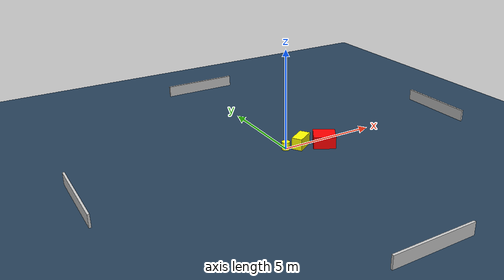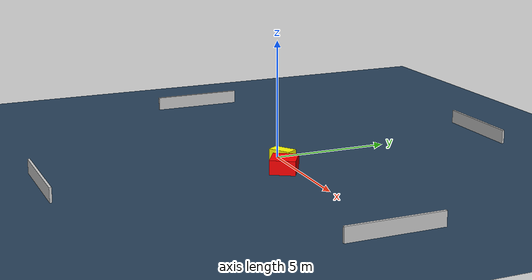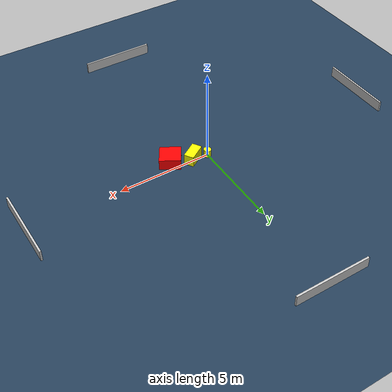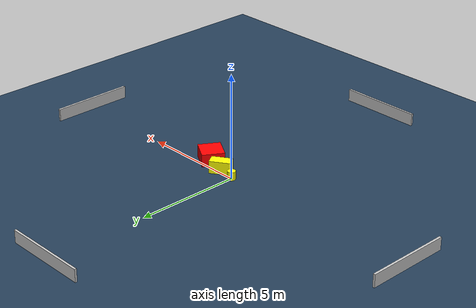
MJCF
<?xml version="1.0" ?>
<mujoco model="generated_environment">
  <option timestep="0.01" integrator="RK4" cone="elliptic"/>
  <default>
    <geom density="1"/>
  </default>
  <asset>
    <texture builtin="gradient" height="3072" name="skybox" rgb1="0.3 0.5 0.7" rgb2="0 0 0" type="skybox" width="512"/>
    <texture builtin="checker" height="300" name="groundplane" rgb1="0.2 0.3 0.4" rgb2="0.1 0.2 0.3" type="2d" width="300"/>
    <material name="groundplane" reflectance="0.2" texrepeat="5 5" texture="groundplane"/>
  </asset>
  <worldbody>
    <light dir="0 0 -1" directional="true" pos="0 0 1.5"/>
    <geom condim="3" friction="0.5 0.005 0.001" material="groundplane" name="floor" pos="0 0 0" size="0 0 0.05" type="plane"/>
    <body name="walls">
      <geom name="wall_1" condim="4" pos="-10.0 0.0 0.3" rgba="0.800000011920929 0.800000011920929 0.800000011920929 1.0" size="0.05 2.0 0.3" type="box"/>
      <geom name="wall_2" condim="4" pos="10.0 0.0 0.3" rgba="0.800000011920929 0.800000011920929 0.800000011920929 1.0" size="0.05 2.0 0.3" type="box"/>
      <geom name="wall_3" condim="4" pos="0.0 -10.0 0.3" rgba="0.800000011920929 0.800000011920929 0.800000011920929 1.0" size="2.0 0.05 0.3" type="box"/>
      <geom name="wall_4" condim="4" pos="0.0 10.0 0.3" rgba="0.800000011920929 0.800000011920929 0.800000011920929 1.0" size="2.0 0.05 0.3" type="box"/>
    </body>
    <body name="robot">
      <joint name="joint_x" type="slide" pos="0 0 0" axis="1 0 0"/>
      <joint name="joint_y" type="slide" pos="0 0 0" axis="0 1 0"/>
      <geom name="robot" type="cylinder" pos="0.0 0.0 0.2" size="0.2 0.2 0.0" mass="5.0" friction="1.0 0.005 0.0001" condim="4" rgba="1.0 1.0 0.0 1.0"/>
    </body>
    <body name="obstacle_1_movable">
      <geom name="obstacle_1_movable" condim="4" pos="0.8031566831867569 -0.11180743197747164 0.3" euler="0 0 32.522257359451416" friction="0.0 0.005 0.001" rgba="1.0 1.0 0.0 1.0" size="0.492871413968874 0.2637023971097915 0.3" type="box" mass="0.1"/>
      <joint type="free"/>
    </body>
    <body name="obstacle_2_static">
      <geom name="obstacle_2_static" condim="4" pos="1.9049659377980497 -0.5305417773236677 0.3" euler="0 0 238.35768643377583" friction="0.0 0.005 0.001" rgba="1.0 0.0 0.0 1.0" size="0.5324072973006895 0.5534801761859225 0.3" type="box"/>
    </body>
  </worldbody>
  <actuator>
    <motor name="actuator_x" joint="joint_x" gear="1" ctrlrange="-1 1"/>
    <motor name="actuator_y" joint="joint_y" gear="1" ctrlrange="-1 1"/>
  </actuator>
</mujoco>
